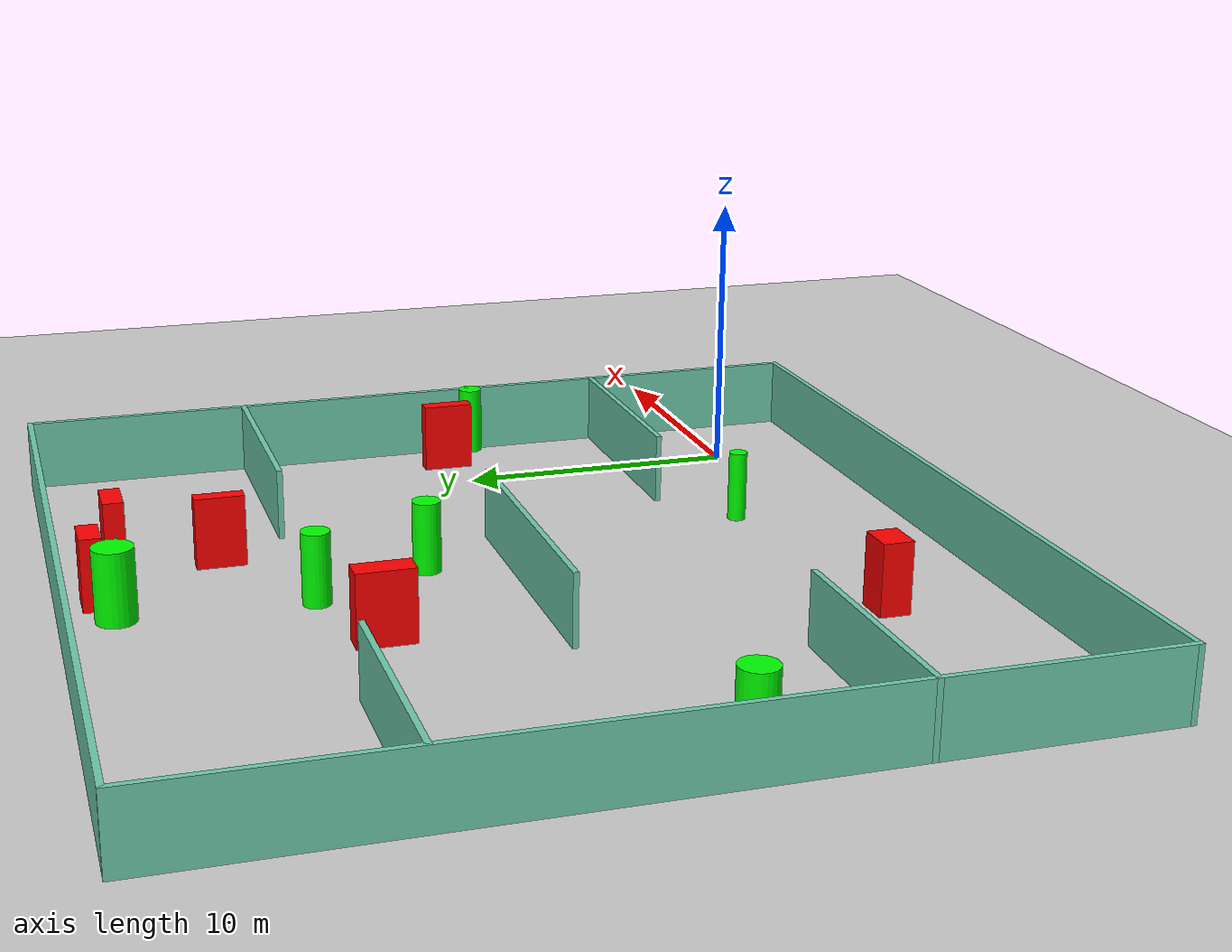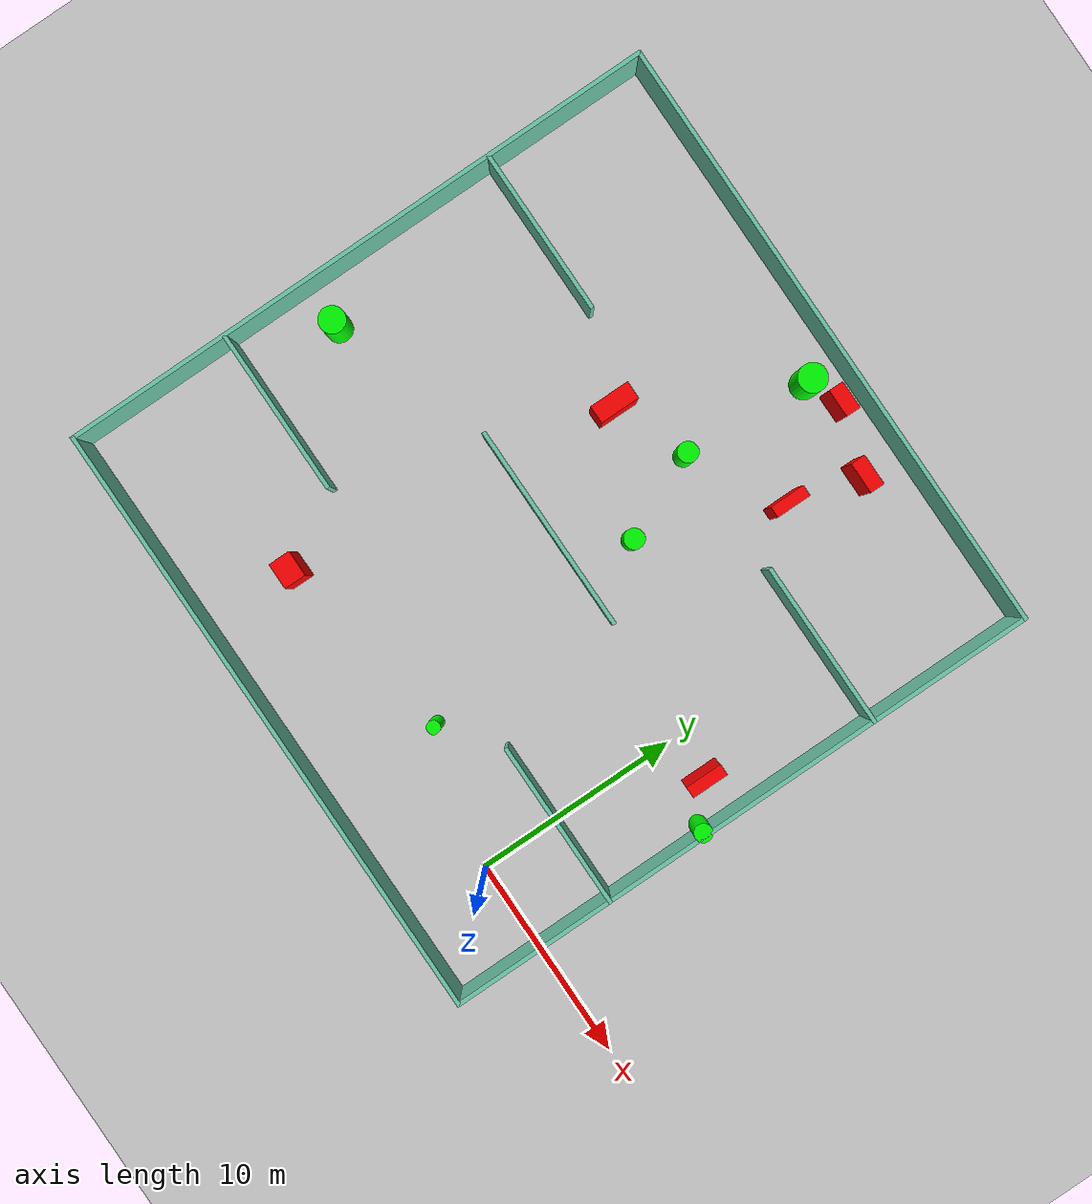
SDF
<sdf version="1.7">
 <world name="default">
  <light name="sun" type="directional">
   <pose>0 0 10 0 -0 0</pose>
   <diffuse>0.8 0.8 0.8 1</diffuse>
   <specular>0.2 0.2 0.2 1</specular>
   <attenuation>
    <range>1000</range>
    <constant>0.9</constant>
    <linear>0.01</linear>
    <quadratic>0.001</quadratic>
   </attenuation>
   <direction>-0.5 0.1 -0.9</direction>
   <spot><inner_angle>0</inner_angle><outer_angle>0</outer_angle><falloff>0</falloff></spot>
  </light>
  <model name="ground_plane">
   <static>1</static>
   <link name="link">
    <collision name="collision">
     <geometry><plane><normal>0 0 1</normal><size>100 100</size></plane></geometry>
     <surface>
      <contact><collide_bitmask>65535</collide_bitmask></contact>
      <friction><ode><mu>100</mu><mu2>50</mu2></ode></friction>
     </surface>
    </collision>
    <visual name="visual">
     <cast_shadows>0</cast_shadows>
     <geometry><plane><normal>0 0 1</normal><size>100 100</size></plane></geometry>
     <material>
      <script><uri>file://media/materials/scripts/gazebo.material</uri><name>Gazebo/Grey</name></script>
     </material>
    </visual>
   </link>
  </model>
  <gravity>0 0 -9.8</gravity>
  <magnetic_field>6e-06 2.3e-05 -4.2e-05</magnetic_field>
  <atmosphere type="adiabatic"/>
  <physics type="ode">
   <max_step_size>0.001</max_step_size>
   <real_time_factor>1</real_time_factor>
   <real_time_update_rate>1000</real_time_update_rate>
  </physics>
  <scene><ambient>0.4 0.4 0.4 1</ambient><background>0.7 0.7 0.7 1</background><shadows>1</shadows></scene>
  <spherical_coordinates>
   <surface_model>EARTH_WGS84</surface_model>
   <latitude_deg>0</latitude_deg>
   <longitude_deg>0</longitude_deg>
   <elevation>0</elevation>
   <heading_deg>0</heading_deg>
  </spherical_coordinates>
  <model name="my_base_walls">
   <link name="Wall_10">
    <collision name="Wall_10_Collision">
     <geometry><box><size>8.2 0.2 2.5</size></box></geometry>
     <pose>0 0 1.25 0 -0 0</pose>
    </collision>
    <visual name="Wall_10_Visual">
     <pose>0 0 1.25 0 -0 0</pose>
     <geometry><box><size>8.2 0.2 2.5</size></box></geometry>
     <material>
      <script><uri>file://media/materials/scripts/gazebo.material</uri><name>Gazebo/Grey</name></script>
      <ambient>0.435294 0.796078 0.67451 1</ambient>
     </material>
     <meta><layer>0</layer></meta>
    </visual>
    <pose>-11 -7 0 0 -0 0</pose>
   </link>
   <link name="Wall_12">
    <collision name="Wall_12_Collision">
     <geometry><box><size>8.2 0.2 2.5</size></box></geometry>
     <pose>0 0 1.25 0 -0 0</pose>
    </collision>
    <visual name="Wall_12_Visual">
     <pose>0 0 1.25 0 -0 0</pose>
     <geometry><box><size>8.2 0.2 2.5</size></box></geometry>
     <material>
      <script><uri>file://media/materials/scripts/gazebo.material</uri><name>Gazebo/Grey</name></script>
      <ambient>0.435294 0.796078 0.67451 1</ambient>
     </material>
     <meta><layer>0</layer></meta>
    </visual>
    <pose>-11 7 0 0 -0 0</pose>
   </link>
   <link name="Wall_14">
    <collision name="Wall_14_Collision">
     <geometry><box><size>8.2 0.2 2.5</size></box></geometry>
     <pose>0 0 1.25 0 -0 0</pose>
    </collision>
    <visual name="Wall_14_Visual">
     <pose>0 0 1.25 0 -0 0</pose>
     <geometry><box><size>8.2 0.2 2.5</size></box></geometry>
     <material>
      <script><uri>file://media/materials/scripts/gazebo.material</uri><name>Gazebo/Grey</name></script>
      <ambient>0.435294 0.796078 0.67451 1</ambient>
     </material>
     <meta><layer>0</layer></meta>
    </visual>
    <pose>11 7 0 0 -0 3.14159</pose>
   </link>
   <link name="Wall_16">
    <collision name="Wall_16_Collision">
     <geometry><box><size>10.2 0.2 2.5</size></box></geometry>
     <pose>0 0 1.25 0 -0 0</pose>
    </collision>
    <visual name="Wall_16_Visual">
     <pose>0 0 1.25 0 -0 0</pose>
     <geometry><box><size>10.2 0.2 2.5</size></box></geometry>
     <material>
      <script><uri>file://media/materials/scripts/gazebo.material</uri><name>Gazebo/Grey</name></script>
      <ambient>0.435294 0.796078 0.67451 1</ambient>
     </material>
     <meta><layer>0</layer></meta>
    </visual>
    <pose>0 0 0 0 -0 3.14159</pose>
   </link>
   <link name="Wall_2">
    <collision name="Wall_2_Collision">
     <geometry><box><size>30.2 0.2 2.5</size></box></geometry>
     <pose>0 0 1.25 0 -0 0</pose>
    </collision>
    <visual name="Wall_2_Visual">
     <pose>0 0 1.25 0 -0 0</pose>
     <geometry><box><size>30.2 0.2 2.5</size></box></geometry>
     <material>
      <script><uri>file://media/materials/scripts/gazebo.material</uri><name>Gazebo/Grey</name></script>
      <ambient>0.435294 0.796078 0.67451 1</ambient>
     </material>
     <meta><layer>0</layer></meta>
    </visual>
    <pose>0 -15 0 0 -0 3.14159</pose>
   </link>
   <link name="Wall_3">
    <collision name="Wall_3_Collision">
     <geometry><box><size>30.2 0.2 2.5</size></box></geometry>
     <pose>0 0 1.25 0 -0 0</pose>
    </collision>
    <visual name="Wall_3_Visual">
     <pose>0 0 1.25 0 -0 0</pose>
     <geometry><box><size>30.2 0.2 2.5</size></box></geometry>
     <material>
      <script><uri>file://media/materials/scripts/gazebo.material</uri><name>Gazebo/Grey</name></script>
      <ambient>0.435294 0.796078 0.67451 1</ambient>
     </material>
     <meta><layer>0</layer></meta>
    </visual>
    <pose>-15 0 0 0 -0 1.5708</pose>
   </link>
   <link name="Wall_4">
    <collision name="Wall_4_Collision">
     <geometry><box><size>30.2 0.2 2.5</size></box></geometry>
     <pose>0 0 1.25 0 -0 0</pose>
    </collision>
    <visual name="Wall_4_Visual">
     <pose>0 0 1.25 0 -0 0</pose>
     <geometry><box><size>30.2 0.2 2.5</size></box></geometry>
     <material>
      <script><uri>file://media/materials/scripts/gazebo.material</uri><name>Gazebo/Grey</name></script>
      <ambient>0.435294 0.796078 0.67451 1</ambient>
     </material>
     <meta><layer>0</layer></meta>
    </visual>
    <pose>0 15 0 0 -0 0</pose>
   </link>
   <link name="Wall_6">
    <collision name="Wall_6_Collision">
     <geometry><box><size>30.2 0.2 2.5</size></box></geometry>
     <pose>0 0 1.25 0 -0 0</pose>
    </collision>
    <visual name="Wall_6_Visual">
     <pose>0 0 1.25 0 -0 0</pose>
     <geometry><box><size>30.2 0.2 2.5</size></box></geometry>
     <material>
      <script><uri>file://media/materials/scripts/gazebo.material</uri><name>Gazebo/Grey</name></script>
      <ambient>0.435294 0.796078 0.67451 1</ambient>
     </material>
     <meta><layer>0</layer></meta>
    </visual>
    <pose>15 0 0 0 -0 1.5708</pose>
   </link>
   <link name="Wall_8">
    <collision name="Wall_8_Collision">
     <geometry><box><size>8.2 0.2 2.5</size></box></geometry>
     <pose>0 0 1.25 0 -0 0</pose>
    </collision>
    <visual name="Wall_8_Visual">
     <pose>0 0 1.25 0 -0 0</pose>
     <geometry><box><size>8.2 0.2 2.5</size></box></geometry>
     <material>
      <script><uri>file://media/materials/scripts/gazebo.material</uri><name>Gazebo/Grey</name></script>
      <ambient>0.435294 0.796078 0.67451 1</ambient>
     </material>
     <meta><layer>0</layer></meta>
    </visual>
    <pose>11 -7 0 0 -0 3.14159</pose>
   </link>
   <static>1</static>
   <pose>-11 11 0 0 -0 0</pose>
  </model>
  <model name="cylinder1">
   <static>1</static>
   <link name="link">
    <inertial>
     <mass>1</mass>
     <inertia><ixx>0.5</ixx><ixy>0</ixy><ixz>0</ixz><iyy>0.5</iyy><iyz>0</iyz><izz>1</izz></inertia>
    </inertial>
    <collision name="collision">
     <geometry><cylinder><radius>0.6861071959135194</radius><length>2.5</length></cylinder></geometry>
    </collision>
    <visual name="visual">
     <geometry><cylinder><radius>0.6861071959135194</radius><length>2.5</length></cylinder></geometry>
     <material>
      <ambient>0 1 0 1</ambient>
      <diffuse>0 1 0 1</diffuse>
      <specular>0.1 0.1 0.1 1</specular>
      <emissive>0 0 0 0</emissive>
     </material>
    </visual>
   </link>
   <pose>-9.938251657133039 24.259522012789837 1.25 0 0 0</pose>
  </model>
  <model name="cylinder2">
   <static>1</static>
   <link name="link">
    <inertial>
     <mass>1</mass>
     <inertia><ixx>0.5</ixx><ixy>0</ixy><ixz>0</ixz><iyy>0.5</iyy><iyz>0</iyz><izz>1</izz></inertia>
    </inertial>
    <collision name="collision">
     <geometry><cylinder><radius>0.32374725689132267</radius><length>2.5</length></cylinder></geometry>
    </collision>
    <visual name="visual">
     <geometry><cylinder><radius>0.32374725689132267</radius><length>2.5</length></cylinder></geometry>
     <material>
      <ambient>0 1 0 1</ambient>
      <diffuse>0 1 0 1</diffuse>
      <specular>0.1 0.1 0.1 1</specular>
      <emissive>0 0 0 0</emissive>
     </material>
    </visual>
   </link>
   <pose>-6.637733414482041 1.9090299212162503 1.25 0 0 0</pose>
  </model>
  <model name="cylinder3">
   <static>1</static>
   <link name="link">
    <inertial>
     <mass>1</mass>
     <inertia><ixx>0.5</ixx><ixy>0</ixy><ixz>0</ixz><iyy>0.5</iyy><iyz>0</iyz><izz>1</izz></inertia>
    </inertial>
    <collision name="collision">
     <geometry><cylinder><radius>0.4854320429354557</radius><length>2.5</length></cylinder></geometry>
    </collision>
    <visual name="visual">
     <geometry><cylinder><radius>0.4854320429354557</radius><length>2.5</length></cylinder></geometry>
     <material>
      <ambient>0 1 0 1</ambient>
      <diffuse>0 1 0 1</diffuse>
      <specular>0.1 0.1 0.1 1</specular>
      <emissive>0 0 0 0</emissive>
     </material>
    </visual>
   </link>
   <pose>-10.324699263544472 17.910179378070236 1.25 0 0 0</pose>
  </model>
  <model name="cylinder4">
   <static>1</static>
   <link name="link">
    <inertial>
     <mass>1</mass>
     <inertia><ixx>0.5</ixx><ixy>0</ixy><ixz>0</ixz><iyy>0.5</iyy><iyz>0</iyz><izz>1</izz></inertia>
    </inertial>
    <collision name="collision">
     <geometry><cylinder><radius>0.43131118404095203</radius><length>2.5</length></cylinder></geometry>
    </collision>
    <visual name="visual">
     <geometry><cylinder><radius>0.43131118404095203</radius><length>2.5</length></cylinder></geometry>
     <material>
      <ambient>0 1 0 1</ambient>
      <diffuse>0 1 0 1</diffuse>
      <specular>0.1 0.1 0.1 1</specular>
      <emissive>0 0 0 0</emissive>
     </material>
    </visual>
   </link>
   <pose>3.825552039951628 9.06505299381035 1.25 0 0 0</pose>
  </model>
  <model name="cylinder5">
   <static>1</static>
   <link name="link">
    <inertial>
     <mass>1</mass>
     <inertia><ixx>0.5</ixx><ixy>0</ixy><ixz>0</ixz><iyy>0.5</iyy><iyz>0</iyz><izz>1</izz></inertia>
    </inertial>
    <collision name="collision">
     <geometry><cylinder><radius>0.6337709167011707</radius><length>2.5</length></cylinder></geometry>
    </collision>
    <visual name="visual">
     <geometry><cylinder><radius>0.6337709167011707</radius><length>2.5</length></cylinder></geometry>
     <material>
      <ambient>0 1 0 1</ambient>
      <diffuse>0 1 0 1</diffuse>
      <specular>0.1 0.1 0.1 1</specular>
      <emissive>0 0 0 0</emissive>
     </material>
    </visual>
   </link>
   <pose>-23.89638788719615 8.291110903566103 1.25 0 0 0</pose>
  </model>
  <model name="cylinder6">
   <static>1</static>
   <link name="link">
    <inertial>
     <mass>1</mass>
     <inertia><ixx>0.5</ixx><ixy>0</ixy><ixz>0</ixz><iyy>0.5</iyy><iyz>0</iyz><izz>1</izz></inertia>
    </inertial>
    <collision name="collision">
     <geometry><cylinder><radius>0.484708856304489</radius><length>2.5</length></cylinder></geometry>
    </collision>
    <visual name="visual">
     <geometry><cylinder><radius>0.484708856304489</radius><length>2.5</length></cylinder></geometry>
     <material>
      <ambient>0 1 0 1</ambient>
      <diffuse>0 1 0 1</diffuse>
      <specular>0.1 0.1 0.1 1</specular>
      <emissive>0 0 0 0</emissive>
     </material>
    </visual>
   </link>
   <pose>-8.511220167425364 13.826727538941654 1.25 0 0 0</pose>
  </model>
  <model name="box1">
   <static>1</static>
   <link name="link">
    <inertial>
     <mass>1</mass>
     <inertia><ixx>0.083</ixx><ixy>0</ixy><ixz>0</ixz><iyy>0.083</iyy><iyz>0</iyz><izz>0.083</izz></inertia>
    </inertial>
    <collision name="collision">
     <geometry><box><size>0.867855285128964 1.9669778297434293 2.5</size></box></geometry>
    </collision>
    <visual name="visual">
     <geometry><box><size>0.867855285128964 1.9669778297434293 2.5</size></box></geometry>
     <material>
      <ambient>1 0 0 1</ambient>
      <diffuse>1 0 0 1</diffuse>
      <specular>0.1 0.1 0.1 1</specular>
      <emissive>0 0 0 0</emissive>
     </material>
    </visual>
    <sensor name="my_contact" type="contact">
     <contact><collision>box_collision</collision><topic>__default_topic__</topic></contact>
    </sensor>
   </link>
   <pose>-13.940828292210645 16.478131967117758 1.25 0 0 0</pose>
  </model>
  <model name="box2">
   <static>1</static>
   <link name="link">
    <inertial>
     <mass>1</mass>
     <inertia><ixx>0.083</ixx><ixy>0</ixy><ixz>0</ixz><iyy>0.083</iyy><iyz>0</iyz><izz>0.083</izz></inertia>
    </inertial>
    <collision name="collision">
     <geometry><box><size>0.5611511792189796 1.8126547624978293 2.5</size></box></geometry>
    </collision>
    <visual name="visual">
     <geometry><box><size>0.5611511792189796 1.8126547624978293 2.5</size></box></geometry>
     <material>
      <ambient>1 0 0 1</ambient>
      <diffuse>1 0 0 1</diffuse>
      <specular>0.1 0.1 0.1 1</specular>
      <emissive>0 0 0 0</emissive>
     </material>
    </visual>
    <sensor name="my_contact" type="contact">
     <contact><collision>box_collision</collision><topic>__default_topic__</topic></contact>
    </sensor>
   </link>
   <pose>2.0443130783377086 10.471930509568109 1.25 0 0 0</pose>
  </model>
  <model name="box3">
   <static>1</static>
   <link name="link">
    <inertial>
     <mass>1</mass>
     <inertia><ixx>0.083</ixx><ixy>0</ixy><ixz>0</ixz><iyy>0.083</iyy><iyz>0</iyz><izz>0.083</izz></inertia>
    </inertial>
    <collision name="collision">
     <geometry><box><size>0.5519273886101079 1.7112678653005975 2.5</size></box></geometry>
    </collision>
    <visual name="visual">
     <geometry><box><size>0.5519273886101079 1.7112678653005975 2.5</size></box></geometry>
     <material>
      <ambient>1 0 0 1</ambient>
      <diffuse>1 0 0 1</diffuse>
      <specular>0.1 0.1 0.1 1</specular>
      <emissive>0 0 0 0</emissive>
     </material>
    </visual>
    <sensor name="my_contact" type="contact">
     <contact><collision>box_collision</collision><topic>__default_topic__</topic></contact>
    </sensor>
   </link>
   <pose>-6.014940618711718 20.39732353012512 1.25 0 0 0</pose>
  </model>
  <model name="box4">
   <static>1</static>
   <link name="link">
    <inertial>
     <mass>1</mass>
     <inertia><ixx>0.083</ixx><ixy>0</ixy><ixz>0</ixz><iyy>0.083</iyy><iyz>0</iyz><izz>0.083</izz></inertia>
    </inertial>
    <collision name="collision">
     <geometry><box><size>1.3835660030716026 0.7182015766682672 2.5</size></box></geometry>
    </collision>
    <visual name="visual">
     <geometry><box><size>1.3835660030716026 0.7182015766682672 2.5</size></box></geometry>
     <material>
      <ambient>1 0 0 1</ambient>
      <diffuse>1 0 0 1</diffuse>
      <specular>0.1 0.1 0.1 1</specular>
      <emissive>0 0 0 0</emissive>
     </material>
    </visual>
    <sensor name="my_contact" type="contact">
     <contact><collision>box_collision</collision><topic>__default_topic__</topic></contact>
    </sensor>
   </link>
   <pose>-8.38245595749875 24.880299951196392 1.25 0 0 0</pose>
  </model>
  <model name="box5">
   <static>1</static>
   <link name="link">
    <inertial>
     <mass>1</mass>
     <inertia><ixx>0.083</ixx><ixy>0</ixy><ixz>0</ixz><iyy>0.083</iyy><iyz>0</iyz><izz>0.083</izz></inertia>
    </inertial>
    <collision name="collision">
     <geometry><box><size>1.5357994672622877 0.7100410705395586 2.5</size></box></geometry>
    </collision>
    <visual name="visual">
     <geometry><box><size>1.5357994672622877 0.7100410705395586 2.5</size></box></geometry>
     <material>
      <ambient>1 0 0 1</ambient>
      <diffuse>1 0 0 1</diffuse>
      <specular>0.1 0.1 0.1 1</specular>
      <emissive>0 0 0 0</emissive>
     </material>
    </visual>
    <sensor name="my_contact" type="contact">
     <contact><collision>box_collision</collision><topic>__default_topic__</topic></contact>
    </sensor>
   </link>
   <pose>-5.107237812238143 23.863268098727758 1.25 0 0 0</pose>
  </model>
  <model name="box6">
   <static>1</static>
   <link name="link">
    <inertial>
     <mass>1</mass>
     <inertia><ixx>0.083</ixx><ixy>0</ixy><ixz>0</ixz><iyy>0.083</iyy><iyz>0</iyz><izz>0.083</izz></inertia>
    </inertial>
    <collision name="collision">
     <geometry><box><size>1.270384423609841 1.0661392733075288 2.5</size></box></geometry>
    </collision>
    <visual name="visual">
     <geometry><box><size>1.270384423609841 1.0661392733075288 2.5</size></box></geometry>
     <material>
      <ambient>1 0 0 1</ambient>
      <diffuse>1 0 0 1</diffuse>
      <specular>0.1 0.1 0.1 1</specular>
      <emissive>0 0 0 0</emissive>
     </material>
    </visual>
    <sensor name="my_contact" type="contact">
     <contact><collision>box_collision</collision><topic>__default_topic__</topic></contact>
    </sensor>
   </link>
   <pose>-15.945238961944101 0.49629874047942435 1.25 0 0 0</pose>
  </model>
 </world>
</sdf>
